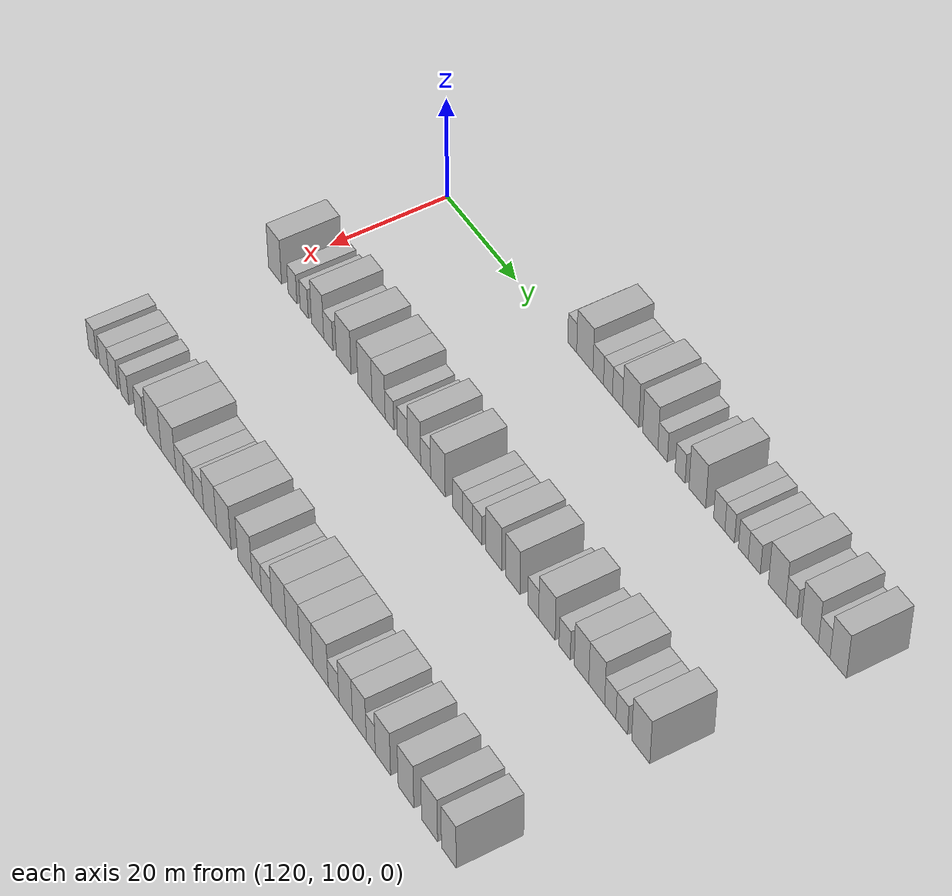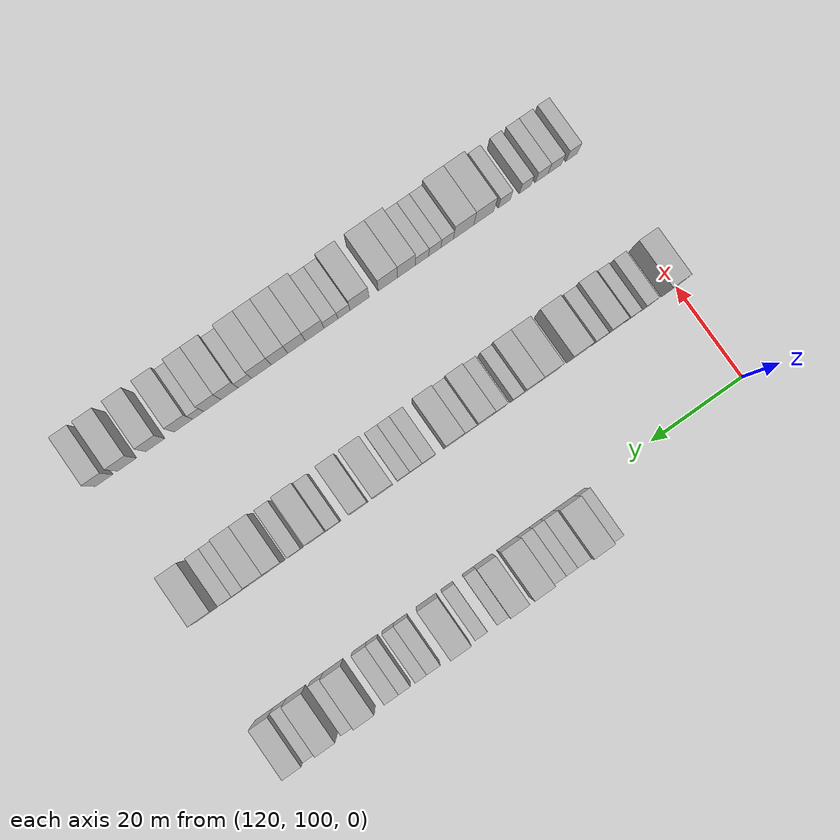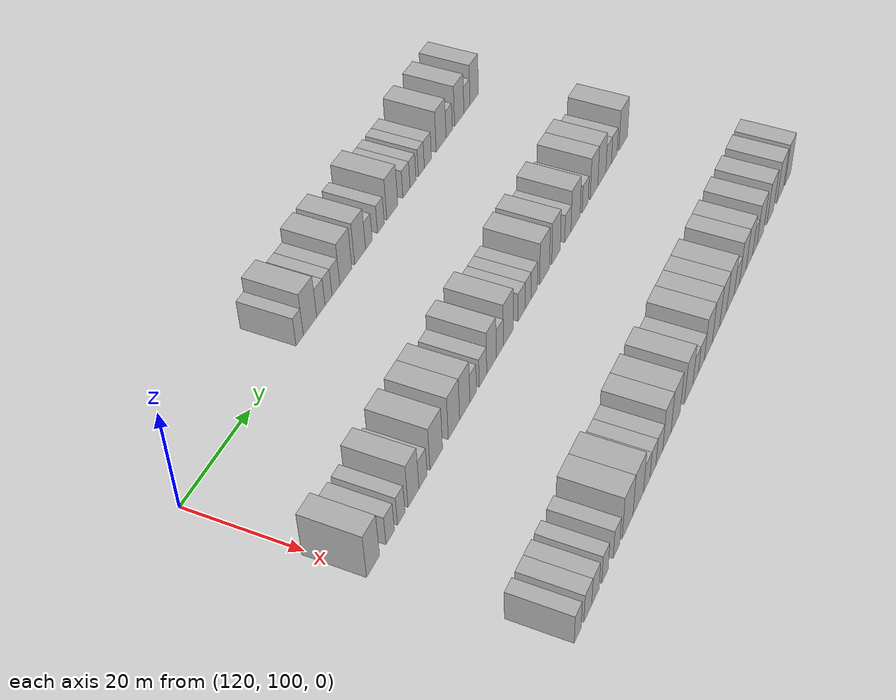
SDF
<sdf version="1.6">
 <world name="default">
  <model name="building_786">
   <static>1</static>
   <pose>115.0000 135.7359 0 0.000000 0.000000 0.000000</pose>
   <link name="link">
    <pose>0 0 3.00 0 0 0</pose>
    <collision name="collision"><geometry><box><size>10.0000 2.4359 6.0000</size></box></geometry></collision>
    <visual name="visual">
     <cast_shadows>0</cast_shadows>
     <geometry><box><size>10.0000 2.4359 6.0000</size></box></geometry>
     <material>
      <script>
       <uri>model://HANNAS_wall/materials/scripts</uri>
       <uri>model://HANNAS_wall/materials/textures</uri>
       <name>vrc/HANNAS_wall</name>
      </script>
     </material>
    </visual>
   </link>
  </model>
  <model name="building_787">
   <static>1</static>
   <pose>115.0000 139.1813 0 0.000000 0.000000 0.000000</pose>
   <link name="link">
    <pose>0 0 4.50 0 0 0</pose>
    <collision name="collision"><geometry><box><size>10.0000 4.4549 9.0000</size></box></geometry></collision>
    <visual name="visual">
     <cast_shadows>0</cast_shadows>
     <geometry><box><size>10.0000 4.4549 9.0000</size></box></geometry>
     <material>
      <script>
       <uri>model://HANNAS_wall/materials/scripts</uri>
       <uri>model://HANNAS_wall/materials/textures</uri>
       <name>vrc/HANNAS_wall</name>
      </script>
     </material>
    </visual>
   </link>
  </model>
  <model name="building_788">
   <static>1</static>
   <pose>115.0000 142.8373 0 0.000000 0.000000 0.000000</pose>
   <link name="link">
    <pose>0 0 3.00 0 0 0</pose>
    <collision name="collision"><geometry><box><size>10.0000 2.8572 6.0000</size></box></geometry></collision>
    <visual name="visual">
     <cast_shadows>0</cast_shadows>
     <geometry><box><size>10.0000 2.8572 6.0000</size></box></geometry>
     <material>
      <script>
       <uri>model://HANNAS_wall/materials/scripts</uri>
       <uri>model://HANNAS_wall/materials/textures</uri>
       <name>vrc/HANNAS_wall</name>
      </script>
     </material>
    </visual>
   </link>
  </model>
  <model name="building_789">
   <static>1</static>
   <pose>115.0000 145.4739 0 0.000000 0.000000 0.000000</pose>
   <link name="link">
    <pose>0 0 3.00 0 0 0</pose>
    <collision name="collision"><geometry><box><size>10.0000 2.4160 6.0000</size></box></geometry></collision>
    <visual name="visual">
     <cast_shadows>0</cast_shadows>
     <geometry><box><size>10.0000 2.4160 6.0000</size></box></geometry>
     <material>
      <script>
       <uri>model://HANNAS_wall/materials/scripts</uri>
       <uri>model://HANNAS_wall/materials/textures</uri>
       <name>vrc/HANNAS_wall</name>
      </script>
     </material>
    </visual>
   </link>
  </model>
  <model name="building_790">
   <static>1</static>
   <pose>115.0000 148.0427 0 0.000000 0.000000 0.000000</pose>
   <link name="link">
    <pose>0 0 3.00 0 0 0</pose>
    <collision name="collision"><geometry><box><size>10.0000 2.7216 6.0000</size></box></geometry></collision>
    <visual name="visual">
     <cast_shadows>0</cast_shadows>
     <geometry><box><size>10.0000 2.7216 6.0000</size></box></geometry>
     <material>
      <script>
       <uri>model://HANNAS_wall/materials/scripts</uri>
       <uri>model://HANNAS_wall/materials/textures</uri>
       <name>vrc/HANNAS_wall</name>
      </script>
     </material>
    </visual>
   </link>
  </model>
  <model name="building_791">
   <static>1</static>
   <pose>115.0000 151.5629 0 0.000000 0.000000 0.000000</pose>
   <link name="link">
    <pose>0 0 4.50 0 0 0</pose>
    <collision name="collision"><geometry><box><size>10.0000 4.3187 9.0000</size></box></geometry></collision>
    <visual name="visual">
     <cast_shadows>0</cast_shadows>
     <geometry><box><size>10.0000 4.3187 9.0000</size></box></geometry>
     <material>
      <script>
       <uri>model://HANNAS_wall/materials/scripts</uri>
       <uri>model://HANNAS_wall/materials/textures</uri>
       <name>vrc/HANNAS_wall</name>
      </script>
     </material>
    </visual>
   </link>
  </model>
  <model name="building_792">
   <static>1</static>
   <pose>115.0000 156.7295 0 0.000000 0.000000 0.000000</pose>
   <link name="link">
    <pose>0 0 4.50 0 0 0</pose>
    <collision name="collision"><geometry><box><size>10.0000 4.0146 9.0000</size></box></geometry></collision>
    <visual name="visual">
     <cast_shadows>0</cast_shadows>
     <geometry><box><size>10.0000 4.0146 9.0000</size></box></geometry>
     <material>
      <script>
       <uri>model://HANNAS_wall/materials/scripts</uri>
       <uri>model://HANNAS_wall/materials/textures</uri>
       <name>vrc/HANNAS_wall</name>
      </script>
     </material>
    </visual>
   </link>
  </model>
  <model name="building_793">
   <static>1</static>
   <pose>115.0000 159.9812 0 0.000000 0.000000 0.000000</pose>
   <link name="link">
    <pose>0 0 3.00 0 0 0</pose>
    <collision name="collision"><geometry><box><size>10.0000 2.4886 6.0000</size></box></geometry></collision>
    <visual name="visual">
     <cast_shadows>0</cast_shadows>
     <geometry><box><size>10.0000 2.4886 6.0000</size></box></geometry>
     <material>
      <script>
       <uri>model://HANNAS_wall/materials/scripts</uri>
       <uri>model://HANNAS_wall/materials/textures</uri>
       <name>vrc/HANNAS_wall</name>
      </script>
     </material>
    </visual>
   </link>
  </model>
  <model name="building_794">
   <static>1</static>
   <pose>115.0000 164.5142 0 0.000000 0.000000 0.000000</pose>
   <link name="link">
    <pose>0 0 3.00 0 0 0</pose>
    <collision name="collision"><geometry><box><size>10.0000 2.5775 6.0000</size></box></geometry></collision>
    <visual name="visual">
     <cast_shadows>0</cast_shadows>
     <geometry><box><size>10.0000 2.5775 6.0000</size></box></geometry>
     <material>
      <script>
       <uri>model://HANNAS_wall/materials/scripts</uri>
       <uri>model://HANNAS_wall/materials/textures</uri>
       <name>vrc/HANNAS_wall</name>
      </script>
     </material>
    </visual>
   </link>
  </model>
  <model name="building_795">
   <static>1</static>
   <pose>115.0000 168.9450 0 0.000000 0.000000 0.000000</pose>
   <link name="link">
    <pose>0 0 4.50 0 0 0</pose>
    <collision name="collision"><geometry><box><size>10.0000 4.2841 9.0000</size></box></geometry></collision>
    <visual name="visual">
     <cast_shadows>0</cast_shadows>
     <geometry><box><size>10.0000 4.2841 9.0000</size></box></geometry>
     <material>
      <script>
       <uri>model://HANNAS_wall/materials/scripts</uri>
       <uri>model://HANNAS_wall/materials/textures</uri>
       <name>vrc/HANNAS_wall</name>
      </script>
     </material>
    </visual>
   </link>
  </model>
  <model name="building_796">
   <static>1</static>
   <pose>115.0000 174.5108 0 0.000000 0.000000 0.000000</pose>
   <link name="link">
    <pose>0 0 3.00 0 0 0</pose>
    <collision name="collision"><geometry><box><size>10.0000 2.8474 6.0000</size></box></geometry></collision>
    <visual name="visual">
     <cast_shadows>0</cast_shadows>
     <geometry><box><size>10.0000 2.8474 6.0000</size></box></geometry>
     <material>
      <script>
       <uri>model://HANNAS_wall/materials/scripts</uri>
       <uri>model://HANNAS_wall/materials/textures</uri>
       <name>vrc/HANNAS_wall</name>
      </script>
     </material>
    </visual>
   </link>
  </model>
  <model name="building_797">
   <static>1</static>
   <pose>115.0000 177.1391 0 0.000000 0.000000 0.000000</pose>
   <link name="link">
    <pose>0 0 3.00 0 0 0</pose>
    <collision name="collision"><geometry><box><size>10.0000 2.4092 6.0000</size></box></geometry></collision>
    <visual name="visual">
     <cast_shadows>0</cast_shadows>
     <geometry><box><size>10.0000 2.4092 6.0000</size></box></geometry>
     <material>
      <script>
       <uri>model://HANNAS_wall/materials/scripts</uri>
       <uri>model://HANNAS_wall/materials/textures</uri>
       <name>vrc/HANNAS_wall</name>
      </script>
     </material>
    </visual>
   </link>
  </model>
  <model name="building_798">
   <static>1</static>
   <pose>115.0000 180.5668 0 0.000000 0.000000 0.000000</pose>
   <link name="link">
    <pose>0 0 3.00 0 0 0</pose>
    <collision name="collision"><geometry><box><size>10.0000 2.4461 6.0000</size></box></geometry></collision>
    <visual name="visual">
     <cast_shadows>0</cast_shadows>
     <geometry><box><size>10.0000 2.4461 6.0000</size></box></geometry>
     <material>
      <script>
       <uri>model://HANNAS_wall/materials/scripts</uri>
       <uri>model://HANNAS_wall/materials/textures</uri>
       <name>vrc/HANNAS_wall</name>
      </script>
     </material>
    </visual>
   </link>
  </model>
  <model name="building_799">
   <static>1</static>
   <pose>115.0000 183.2776 0 0.000000 0.000000 0.000000</pose>
   <link name="link">
    <pose>0 0 3.00 0 0 0</pose>
    <collision name="collision"><geometry><box><size>10.0000 2.9757 6.0000</size></box></geometry></collision>
    <visual name="visual">
     <cast_shadows>0</cast_shadows>
     <geometry><box><size>10.0000 2.9757 6.0000</size></box></geometry>
     <material>
      <script>
       <uri>model://HANNAS_wall/materials/scripts</uri>
       <uri>model://HANNAS_wall/materials/textures</uri>
       <name>vrc/HANNAS_wall</name>
      </script>
     </material>
    </visual>
   </link>
  </model>
  <model name="building_800">
   <static>1</static>
   <pose>115.0000 188.8872 0 0.000000 0.000000 0.000000</pose>
   <link name="link">
    <pose>0 0 4.50 0 0 0</pose>
    <collision name="collision"><geometry><box><size>10.0000 4.2435 9.0000</size></box></geometry></collision>
    <visual name="visual">
     <cast_shadows>0</cast_shadows>
     <geometry><box><size>10.0000 4.2435 9.0000</size></box></geometry>
     <material>
      <script>
       <uri>model://HANNAS_wall/materials/scripts</uri>
       <uri>model://HANNAS_wall/materials/textures</uri>
       <name>vrc/HANNAS_wall</name>
      </script>
     </material>
    </visual>
   </link>
  </model>
  <model name="building_801">
   <static>1</static>
   <pose>115.0000 192.3845 0 0.000000 0.000000 0.000000</pose>
   <link name="link">
    <pose>0 0 3.00 0 0 0</pose>
    <collision name="collision"><geometry><box><size>10.0000 2.7510 6.0000</size></box></geometry></collision>
    <visual name="visual">
     <cast_shadows>0</cast_shadows>
     <geometry><box><size>10.0000 2.7510 6.0000</size></box></geometry>
     <material>
      <script>
       <uri>model://HANNAS_wall/materials/scripts</uri>
       <uri>model://HANNAS_wall/materials/textures</uri>
       <name>vrc/HANNAS_wall</name>
      </script>
     </material>
    </visual>
   </link>
  </model>
  <model name="building_802">
   <static>1</static>
   <pose>115.0000 196.8190 0 0.000000 0.000000 0.000000</pose>
   <link name="link">
    <pose>0 0 4.50 0 0 0</pose>
    <collision name="collision"><geometry><box><size>10.0000 4.1181 9.0000</size></box></geometry></collision>
    <visual name="visual">
     <cast_shadows>0</cast_shadows>
     <geometry><box><size>10.0000 4.1181 9.0000</size></box></geometry>
     <material>
      <script>
       <uri>model://HANNAS_wall/materials/scripts</uri>
       <uri>model://HANNAS_wall/materials/textures</uri>
       <name>vrc/HANNAS_wall</name>
      </script>
     </material>
    </visual>
   </link>
  </model>
  <model name="building_803">
   <static>1</static>
   <pose>115.0000 200.2549 0 0.000000 0.000000 0.000000</pose>
   <link name="link">
    <pose>0 0 3.00 0 0 0</pose>
    <collision name="collision"><geometry><box><size>10.0000 2.7538 6.0000</size></box></geometry></collision>
    <visual name="visual">
     <cast_shadows>0</cast_shadows>
     <geometry><box><size>10.0000 2.7538 6.0000</size></box></geometry>
     <material>
      <script>
       <uri>model://HANNAS_wall/materials/scripts</uri>
       <uri>model://HANNAS_wall/materials/textures</uri>
       <name>vrc/HANNAS_wall</name>
      </script>
     </material>
    </visual>
   </link>
  </model>
  <model name="building_804">
   <static>1</static>
   <pose>115.0000 203.5782 0 0.000000 0.000000 0.000000</pose>
   <link name="link">
    <pose>0 0 4.50 0 0 0</pose>
    <collision name="collision"><geometry><box><size>10.0000 3.8928 9.0000</size></box></geometry></collision>
    <visual name="visual">
     <cast_shadows>0</cast_shadows>
     <geometry><box><size>10.0000 3.8928 9.0000</size></box></geometry>
     <material>
      <script>
       <uri>model://HANNAS_wall/materials/scripts</uri>
       <uri>model://HANNAS_wall/materials/textures</uri>
       <name>vrc/HANNAS_wall</name>
      </script>
     </material>
    </visual>
   </link>
  </model>
  <model name="building_993">
   <static>1</static>
   <pose>145.0000 101.3446 0 0.000000 0.000000 0.000000</pose>
   <link name="link">
    <pose>0 0 4.50 0 0 0</pose>
    <collision name="collision"><geometry><box><size>10.0000 4.0119 9.0000</size></box></geometry></collision>
    <visual name="visual">
     <cast_shadows>0</cast_shadows>
     <geometry><box><size>10.0000 4.0119 9.0000</size></box></geometry>
     <material>
      <script>
       <uri>model://HANNAS_wall/materials/scripts</uri>
       <uri>model://HANNAS_wall/materials/textures</uri>
       <name>vrc/HANNAS_wall</name>
      </script>
     </material>
    </visual>
   </link>
  </model>
  <model name="building_994">
   <static>1</static>
   <pose>145.0000 106.6947 0 0.000000 0.000000 0.000000</pose>
   <link name="link">
    <pose>0 0 3.00 0 0 0</pose>
    <collision name="collision"><geometry><box><size>10.0000 2.6883 6.0000</size></box></geometry></collision>
    <visual name="visual">
     <cast_shadows>0</cast_shadows>
     <geometry><box><size>10.0000 2.6883 6.0000</size></box></geometry>
     <material>
      <script>
       <uri>model://HANNAS_wall/materials/scripts</uri>
       <uri>model://HANNAS_wall/materials/textures</uri>
       <name>vrc/HANNAS_wall</name>
      </script>
     </material>
    </visual>
   </link>
  </model>
  <model name="building_995">
   <static>1</static>
   <pose>145.0000 110.2541 0 0.000000 0.000000 0.000000</pose>
   <link name="link">
    <pose>0 0 3.00 0 0 0</pose>
    <collision name="collision"><geometry><box><size>10.0000 2.4306 6.0000</size></box></geometry></collision>
    <visual name="visual">
     <cast_shadows>0</cast_shadows>
     <geometry><box><size>10.0000 2.4306 6.0000</size></box></geometry>
     <material>
      <script>
       <uri>model://HANNAS_wall/materials/scripts</uri>
       <uri>model://HANNAS_wall/materials/textures</uri>
       <name>vrc/HANNAS_wall</name>
      </script>
     </material>
    </visual>
   </link>
  </model>
  <model name="building_996">
   <static>1</static>
   <pose>145.0000 114.2871 0 0.000000 0.000000 0.000000</pose>
   <link name="link">
    <pose>0 0 4.50 0 0 0</pose>
    <collision name="collision"><geometry><box><size>10.0000 3.6354 9.0000</size></box></geometry></collision>
    <visual name="visual">
     <cast_shadows>0</cast_shadows>
     <geometry><box><size>10.0000 3.6354 9.0000</size></box></geometry>
     <material>
      <script>
       <uri>model://HANNAS_wall/materials/scripts</uri>
       <uri>model://HANNAS_wall/materials/textures</uri>
       <name>vrc/HANNAS_wall</name>
      </script>
     </material>
    </visual>
   </link>
  </model>
  <model name="building_997">
   <static>1</static>
   <pose>145.0000 117.4827 0 0.000000 0.000000 0.000000</pose>
   <link name="link">
    <pose>0 0 3.00 0 0 0</pose>
    <collision name="collision"><geometry><box><size>10.0000 2.7558 6.0000</size></box></geometry></collision>
    <visual name="visual">
     <cast_shadows>0</cast_shadows>
     <geometry><box><size>10.0000 2.7558 6.0000</size></box></geometry>
     <material>
      <script>
       <uri>model://HANNAS_wall/materials/scripts</uri>
       <uri>model://HANNAS_wall/materials/textures</uri>
       <name>vrc/HANNAS_wall</name>
      </script>
     </material>
    </visual>
   </link>
  </model>
  <model name="building_998">
   <static>1</static>
   <pose>145.0000 122.0464 0 0.000000 0.000000 0.000000</pose>
   <link name="link">
    <pose>0 0 4.50 0 0 0</pose>
    <collision name="collision"><geometry><box><size>10.0000 4.3716 9.0000</size></box></geometry></collision>
    <visual name="visual">
     <cast_shadows>0</cast_shadows>
     <geometry><box><size>10.0000 4.3716 9.0000</size></box></geometry>
     <material>
      <script>
       <uri>model://HANNAS_wall/materials/scripts</uri>
       <uri>model://HANNAS_wall/materials/textures</uri>
       <name>vrc/HANNAS_wall</name>
      </script>
     </material>
    </visual>
   </link>
  </model>
  <model name="building_999">
   <static>1</static>
   <pose>145.0000 128.2923 0 0.000000 0.000000 0.000000</pose>
   <link name="link">
    <pose>0 0 4.50 0 0 0</pose>
    <collision name="collision"><geometry><box><size>10.0000 4.1203 9.0000</size></box></geometry></collision>
    <visual name="visual">
     <cast_shadows>0</cast_shadows>
     <geometry><box><size>10.0000 4.1203 9.0000</size></box></geometry>
     <material>
      <script>
       <uri>model://HANNAS_wall/materials/scripts</uri>
       <uri>model://HANNAS_wall/materials/textures</uri>
       <name>vrc/HANNAS_wall</name>
      </script>
     </material>
    </visual>
   </link>
  </model>
  <model name="building_1000">
   <static>1</static>
   <pose>145.0000 132.2421 0 0.000000 0.000000 0.000000</pose>
   <link name="link">
    <pose>0 0 4.50 0 0 0</pose>
    <collision name="collision"><geometry><box><size>10.0000 3.7793 9.0000</size></box></geometry></collision>
    <visual name="visual">
     <cast_shadows>0</cast_shadows>
     <geometry><box><size>10.0000 3.7793 9.0000</size></box></geometry>
     <material>
      <script>
       <uri>model://HANNAS_wall/materials/scripts</uri>
       <uri>model://HANNAS_wall/materials/textures</uri>
       <name>vrc/HANNAS_wall</name>
      </script>
     </material>
    </visual>
   </link>
  </model>
  <model name="building_1001">
   <static>1</static>
   <pose>145.0000 135.3693 0 0.000000 0.000000 0.000000</pose>
   <link name="link">
    <pose>0 0 3.00 0 0 0</pose>
    <collision name="collision"><geometry><box><size>10.0000 2.4751 6.0000</size></box></geometry></collision>
    <visual name="visual">
     <cast_shadows>0</cast_shadows>
     <geometry><box><size>10.0000 2.4751 6.0000</size></box></geometry>
     <material>
      <script>
       <uri>model://HANNAS_wall/materials/scripts</uri>
       <uri>model://HANNAS_wall/materials/textures</uri>
       <name>vrc/HANNAS_wall</name>
      </script>
     </material>
    </visual>
   </link>
  </model>
  <model name="building_1002">
   <static>1</static>
   <pose>145.0000 139.0709 0 0.000000 0.000000 0.000000</pose>
   <link name="link">
    <pose>0 0 3.00 0 0 0</pose>
    <collision name="collision"><geometry><box><size>10.0000 2.9282 6.0000</size></box></geometry></collision>
    <visual name="visual">
     <cast_shadows>0</cast_shadows>
     <geometry><box><size>10.0000 2.9282 6.0000</size></box></geometry>
     <material>
      <script>
       <uri>model://HANNAS_wall/materials/scripts</uri>
       <uri>model://HANNAS_wall/materials/textures</uri>
       <name>vrc/HANNAS_wall</name>
      </script>
     </material>
    </visual>
   </link>
  </model>
  <model name="building_1003">
   <static>1</static>
   <pose>145.0000 142.3724 0 0.000000 0.000000 0.000000</pose>
   <link name="link">
    <pose>0 0 4.50 0 0 0</pose>
    <collision name="collision"><geometry><box><size>10.0000 3.6749 9.0000</size></box></geometry></collision>
    <visual name="visual">
     <cast_shadows>0</cast_shadows>
     <geometry><box><size>10.0000 3.6749 9.0000</size></box></geometry>
     <material>
      <script>
       <uri>model://HANNAS_wall/materials/scripts</uri>
       <uri>model://HANNAS_wall/materials/textures</uri>
       <name>vrc/HANNAS_wall</name>
      </script>
     </material>
    </visual>
   </link>
  </model>
  <model name="building_1004">
   <static>1</static>
   <pose>145.0000 145.6116 0 0.000000 0.000000 0.000000</pose>
   <link name="link">
    <pose>0 0 3.00 0 0 0</pose>
    <collision name="collision"><geometry><box><size>10.0000 2.8035 6.0000</size></box></geometry></collision>
    <visual name="visual">
     <cast_shadows>0</cast_shadows>
     <geometry><box><size>10.0000 2.8035 6.0000</size></box></geometry>
     <material>
      <script>
       <uri>model://HANNAS_wall/materials/scripts</uri>
       <uri>model://HANNAS_wall/materials/textures</uri>
       <name>vrc/HANNAS_wall</name>
      </script>
     </material>
    </visual>
   </link>
  </model>
  <model name="building_1005">
   <static>1</static>
   <pose>145.0000 149.0257 0 0.000000 0.000000 0.000000</pose>
   <link name="link">
    <pose>0 0 4.50 0 0 0</pose>
    <collision name="collision"><geometry><box><size>10.0000 4.0246 9.0000</size></box></geometry></collision>
    <visual name="visual">
     <cast_shadows>0</cast_shadows>
     <geometry><box><size>10.0000 4.0246 9.0000</size></box></geometry>
     <material>
      <script>
       <uri>model://HANNAS_wall/materials/scripts</uri>
       <uri>model://HANNAS_wall/materials/textures</uri>
       <name>vrc/HANNAS_wall</name>
      </script>
     </material>
    </visual>
   </link>
  </model>
  <model name="building_1006">
   <static>1</static>
   <pose>145.0000 154.4596 0 0.000000 0.000000 0.000000</pose>
   <link name="link">
    <pose>0 0 3.00 0 0 0</pose>
    <collision name="collision"><geometry><box><size>10.0000 2.8433 6.0000</size></box></geometry></collision>
    <visual name="visual">
     <cast_shadows>0</cast_shadows>
     <geometry><box><size>10.0000 2.8433 6.0000</size></box></geometry>
     <material>
      <script>
       <uri>model://HANNAS_wall/materials/scripts</uri>
       <uri>model://HANNAS_wall/materials/textures</uri>
       <name>vrc/HANNAS_wall</name>
      </script>
     </material>
    </visual>
   </link>
  </model>
  <model name="building_1007">
   <static>1</static>
   <pose>145.0000 157.1742 0 0.000000 0.000000 0.000000</pose>
   <link name="link">
    <pose>0 0 3.00 0 0 0</pose>
    <collision name="collision"><geometry><box><size>10.0000 2.5857 6.0000</size></box></geometry></collision>
    <visual name="visual">
     <cast_shadows>0</cast_shadows>
     <geometry><box><size>10.0000 2.5857 6.0000</size></box></geometry>
     <material>
      <script>
       <uri>model://HANNAS_wall/materials/scripts</uri>
       <uri>model://HANNAS_wall/materials/textures</uri>
       <name>vrc/HANNAS_wall</name>
      </script>
     </material>
    </visual>
   </link>
  </model>
  <model name="building_1008">
   <static>1</static>
   <pose>145.0000 159.7917 0 0.000000 0.000000 0.000000</pose>
   <link name="link">
    <pose>0 0 3.00 0 0 0</pose>
    <collision name="collision"><geometry><box><size>10.0000 2.6494 6.0000</size></box></geometry></collision>
    <visual name="visual">
     <cast_shadows>0</cast_shadows>
     <geometry><box><size>10.0000 2.6494 6.0000</size></box></geometry>
     <material>
      <script>
       <uri>model://HANNAS_wall/materials/scripts</uri>
       <uri>model://HANNAS_wall/materials/textures</uri>
       <name>vrc/HANNAS_wall</name>
      </script>
     </material>
    </visual>
   </link>
  </model>
  <model name="building_1009">
   <static>1</static>
   <pose>145.0000 164.2636 0 0.000000 0.000000 0.000000</pose>
   <link name="link">
    <pose>0 0 4.50 0 0 0</pose>
    <collision name="collision"><geometry><box><size>10.0000 4.2942 9.0000</size></box></geometry></collision>
    <visual name="visual">
     <cast_shadows>0</cast_shadows>
     <geometry><box><size>10.0000 4.2942 9.0000</size></box></geometry>
     <material>
      <script>
       <uri>model://HANNAS_wall/materials/scripts</uri>
       <uri>model://HANNAS_wall/materials/textures</uri>
       <name>vrc/HANNAS_wall</name>
      </script>
     </material>
    </visual>
   </link>
  </model>
  <model name="building_1010">
   <static>1</static>
   <pose>145.0000 169.3309 0 0.000000 0.000000 0.000000</pose>
   <link name="link">
    <pose>0 0 4.50 0 0 0</pose>
    <collision name="collision"><geometry><box><size>10.0000 3.8404 9.0000</size></box></geometry></collision>
    <visual name="visual">
     <cast_shadows>0</cast_shadows>
     <geometry><box><size>10.0000 3.8404 9.0000</size></box></geometry>
     <material>
      <script>
       <uri>model://HANNAS_wall/materials/scripts</uri>
       <uri>model://HANNAS_wall/materials/textures</uri>
       <name>vrc/HANNAS_wall</name>
      </script>
     </material>
    </visual>
   </link>
  </model>
  <model name="building_1011">
   <static>1</static>
   <pose>145.0000 174.6874 0 0.000000 0.000000 0.000000</pose>
   <link name="link">
    <pose>0 0 3.00 0 0 0</pose>
    <collision name="collision"><geometry><box><size>10.0000 2.8726 6.0000</size></box></geometry></collision>
    <visual name="visual">
     <cast_shadows>0</cast_shadows>
     <geometry><box><size>10.0000 2.8726 6.0000</size></box></geometry>
     <material>
      <script>
       <uri>model://HANNAS_wall/materials/scripts</uri>
       <uri>model://HANNAS_wall/materials/textures</uri>
       <name>vrc/HANNAS_wall</name>
      </script>
     </material>
    </visual>
   </link>
  </model>
  <model name="building_1012">
   <static>1</static>
   <pose>145.0000 178.2539 0 0.000000 0.000000 0.000000</pose>
   <link name="link">
    <pose>0 0 4.50 0 0 0</pose>
    <collision name="collision"><geometry><box><size>10.0000 4.2606 9.0000</size></box></geometry></collision>
    <visual name="visual">
     <cast_shadows>0</cast_shadows>
     <geometry><box><size>10.0000 4.2606 9.0000</size></box></geometry>
     <material>
      <script>
       <uri>model://HANNAS_wall/materials/scripts</uri>
       <uri>model://HANNAS_wall/materials/textures</uri>
       <name>vrc/HANNAS_wall</name>
      </script>
     </material>
    </visual>
   </link>
  </model>
  <model name="building_1013">
   <static>1</static>
   <pose>145.0000 182.8282 0 0.000000 0.000000 0.000000</pose>
   <link name="link">
    <pose>0 0 3.00 0 0 0</pose>
    <collision name="collision"><geometry><box><size>10.0000 2.8880 6.0000</size></box></geometry></collision>
    <visual name="visual">
     <cast_shadows>0</cast_shadows>
     <geometry><box><size>10.0000 2.8880 6.0000</size></box></geometry>
     <material>
      <script>
       <uri>model://HANNAS_wall/materials/scripts</uri>
       <uri>model://HANNAS_wall/materials/textures</uri>
       <name>vrc/HANNAS_wall</name>
      </script>
     </material>
    </visual>
   </link>
  </model>
  <model name="building_1014">
   <static>1</static>
   <pose>145.0000 187.1250 0 0.000000 0.000000 0.000000</pose>
   <link name="link">
    <pose>0 0 4.50 0 0 0</pose>
    <collision name="collision"><geometry><box><size>10.0000 3.7057 9.0000</size></box></geometry></collision>
    <visual name="visual">
     <cast_shadows>0</cast_shadows>
     <geometry><box><size>10.0000 3.7057 9.0000</size></box></geometry>
     <material>
      <script>
       <uri>model://HANNAS_wall/materials/scripts</uri>
       <uri>model://HANNAS_wall/materials/textures</uri>
       <name>vrc/HANNAS_wall</name>
      </script>
     </material>
    </visual>
   </link>
  </model>
  <model name="building_1015">
   <static>1</static>
   <pose>145.0000 190.9746 0 0.000000 0.000000 0.000000</pose>
   <link name="link">
    <pose>0 0 4.50 0 0 0</pose>
    <collision name="collision"><geometry><box><size>10.0000 3.9934 9.0000</size></box></geometry></collision>
    <visual name="visual">
     <cast_shadows>0</cast_shadows>
     <geometry><box><size>10.0000 3.9934 9.0000</size></box></geometry>
     <material>
      <script>
       <uri>model://HANNAS_wall/materials/scripts</uri>
       <uri>model://HANNAS_wall/materials/textures</uri>
       <name>vrc/HANNAS_wall</name>
      </script>
     </material>
    </visual>
   </link>
  </model>
  <model name="building_1016">
   <static>1</static>
   <pose>145.0000 194.3828 0 0.000000 0.000000 0.000000</pose>
   <link name="link">
    <pose>0 0 3.00 0 0 0</pose>
    <collision name="collision"><geometry><box><size>10.0000 2.8231 6.0000</size></box></geometry></collision>
    <visual name="visual">
     <cast_shadows>0</cast_shadows>
     <geometry><box><size>10.0000 2.8231 6.0000</size></box></geometry>
     <material>
      <script>
       <uri>model://HANNAS_wall/materials/scripts</uri>
       <uri>model://HANNAS_wall/materials/textures</uri>
       <name>vrc/HANNAS_wall</name>
      </script>
     </material>
    </visual>
   </link>
  </model>
  <model name="building_1017">
   <static>1</static>
   <pose>145.0000 197.2358 0 0.000000 0.000000 0.000000</pose>
   <link name="link">
    <pose>0 0 3.00 0 0 0</pose>
    <collision name="collision"><geometry><box><size>10.0000 2.8828 6.0000</size></box></geometry></collision>
    <visual name="visual">
     <cast_shadows>0</cast_shadows>
     <geometry><box><size>10.0000 2.8828 6.0000</size></box></geometry>
     <material>
      <script>
       <uri>model://HANNAS_wall/materials/scripts</uri>
       <uri>model://HANNAS_wall/materials/textures</uri>
       <name>vrc/HANNAS_wall</name>
      </script>
     </material>
    </visual>
   </link>
  </model>
  <model name="building_1018">
   <static>1</static>
   <pose>145.0000 201.9114 0 0.000000 0.000000 0.000000</pose>
   <link name="link">
    <pose>0 0 4.50 0 0 0</pose>
    <collision name="collision"><geometry><box><size>10.0000 4.4685 9.0000</size></box></geometry></collision>
    <visual name="visual">
     <cast_shadows>0</cast_shadows>
     <geometry><box><size>10.0000 4.4685 9.0000</size></box></geometry>
     <material>
      <script>
       <uri>model://HANNAS_wall/materials/scripts</uri>
       <uri>model://HANNAS_wall/materials/textures</uri>
       <name>vrc/HANNAS_wall</name>
      </script>
     </material>
    </visual>
   </link>
  </model>
  <model name="building_1218">
   <static>1</static>
   <pose>175.0000 101.7971 0 0.000000 0.000000 0.000000</pose>
   <link name="link">
    <pose>0 0 3.00 0 0 0</pose>
    <collision name="collision"><geometry><box><size>10.0000 2.5549 6.0000</size></box></geometry></collision>
    <visual name="visual">
     <cast_shadows>0</cast_shadows>
     <geometry><box><size>10.0000 2.5549 6.0000</size></box></geometry>
     <material>
      <script>
       <uri>model://HANNAS_wall/materials/scripts</uri>
       <uri>model://HANNAS_wall/materials/textures</uri>
       <name>vrc/HANNAS_wall</name>
      </script>
     </material>
    </visual>
   </link>
  </model>
  <model name="building_1219">
   <static>1</static>
   <pose>175.0000 105.5597 0 0.000000 0.000000 0.000000</pose>
   <link name="link">
    <pose>0 0 3.00 0 0 0</pose>
    <collision name="collision"><geometry><box><size>10.0000 2.9703 6.0000</size></box></geometry></collision>
    <visual name="visual">
     <cast_shadows>0</cast_shadows>
     <geometry><box><size>10.0000 2.9703 6.0000</size></box></geometry>
     <material>
      <script>
       <uri>model://HANNAS_wall/materials/scripts</uri>
       <uri>model://HANNAS_wall/materials/textures</uri>
       <name>vrc/HANNAS_wall</name>
      </script>
     </material>
    </visual>
   </link>
  </model>
  <model name="building_1220">
   <static>1</static>
   <pose>175.0000 108.4552 0 0.000000 0.000000 0.000000</pose>
   <link name="link">
    <pose>0 0 3.00 0 0 0</pose>
    <collision name="collision"><geometry><box><size>10.0000 2.8209 6.0000</size></box></geometry></collision>
    <visual name="visual">
     <cast_shadows>0</cast_shadows>
     <geometry><box><size>10.0000 2.8209 6.0000</size></box></geometry>
     <material>
      <script>
       <uri>model://HANNAS_wall/materials/scripts</uri>
       <uri>model://HANNAS_wall/materials/textures</uri>
       <name>vrc/HANNAS_wall</name>
      </script>
     </material>
    </visual>
   </link>
  </model>
  <model name="building_1221">
   <static>1</static>
   <pose>175.0000 112.1241 0 0.000000 0.000000 0.000000</pose>
   <link name="link">
    <pose>0 0 3.00 0 0 0</pose>
    <collision name="collision"><geometry><box><size>10.0000 2.5169 6.0000</size></box></geometry></collision>
    <visual name="visual">
     <cast_shadows>0</cast_shadows>
     <geometry><box><size>10.0000 2.5169 6.0000</size></box></geometry>
     <material>
      <script>
       <uri>model://HANNAS_wall/materials/scripts</uri>
       <uri>model://HANNAS_wall/materials/textures</uri>
       <name>vrc/HANNAS_wall</name>
      </script>
     </material>
    </visual>
   </link>
  </model>
  <model name="building_1222">
   <static>1</static>
   <pose>175.0000 116.6926 0 0.000000 0.000000 0.000000</pose>
   <link name="link">
    <pose>0 0 3.00 0 0 0</pose>
    <collision name="collision"><geometry><box><size>10.0000 2.6200 6.0000</size></box></geometry></collision>
    <visual name="visual">
     <cast_shadows>0</cast_shadows>
     <geometry><box><size>10.0000 2.6200 6.0000</size></box></geometry>
     <material>
      <script>
       <uri>model://HANNAS_wall/materials/scripts</uri>
       <uri>model://HANNAS_wall/materials/textures</uri>
       <name>vrc/HANNAS_wall</name>
      </script>
     </material>
    </visual>
   </link>
  </model>
  <model name="building_1223">
   <static>1</static>
   <pose>175.0000 121.2175 0 0.000000 0.000000 0.000000</pose>
   <link name="link">
    <pose>0 0 4.50 0 0 0</pose>
    <collision name="collision"><geometry><box><size>10.0000 4.4298 9.0000</size></box></geometry></collision>
    <visual name="visual">
     <cast_shadows>0</cast_shadows>
     <geometry><box><size>10.0000 4.4298 9.0000</size></box></geometry>
     <material>
      <script>
       <uri>model://HANNAS_wall/materials/scripts</uri>
       <uri>model://HANNAS_wall/materials/textures</uri>
       <name>vrc/HANNAS_wall</name>
      </script>
     </material>
    </visual>
   </link>
  </model>
  <model name="building_1224">
   <static>1</static>
   <pose>175.0000 125.6699 0 0.000000 0.000000 0.000000</pose>
   <link name="link">
    <pose>0 0 4.50 0 0 0</pose>
    <collision name="collision"><geometry><box><size>10.0000 4.4750 9.0000</size></box></geometry></collision>
    <visual name="visual">
     <cast_shadows>0</cast_shadows>
     <geometry><box><size>10.0000 4.4750 9.0000</size></box></geometry>
     <material>
      <script>
       <uri>model://HANNAS_wall/materials/scripts</uri>
       <uri>model://HANNAS_wall/materials/textures</uri>
       <name>vrc/HANNAS_wall</name>
      </script>
     </material>
    </visual>
   </link>
  </model>
  <model name="building_1225">
   <static>1</static>
   <pose>175.0000 129.2754 0 0.000000 0.000000 0.000000</pose>
   <link name="link">
    <pose>0 0 3.00 0 0 0</pose>
    <collision name="collision"><geometry><box><size>10.0000 2.7360 6.0000</size></box></geometry></collision>
    <visual name="visual">
     <cast_shadows>0</cast_shadows>
     <geometry><box><size>10.0000 2.7360 6.0000</size></box></geometry>
     <material>
      <script>
       <uri>model://HANNAS_wall/materials/scripts</uri>
       <uri>model://HANNAS_wall/materials/textures</uri>
       <name>vrc/HANNAS_wall</name>
      </script>
     </material>
    </visual>
   </link>
  </model>
  <model name="building_1226">
   <static>1</static>
   <pose>175.0000 131.9871 0 0.000000 0.000000 0.000000</pose>
   <link name="link">
    <pose>0 0 3.00 0 0 0</pose>
    <collision name="collision"><geometry><box><size>10.0000 2.6875 6.0000</size></box></geometry></collision>
    <visual name="visual">
     <cast_shadows>0</cast_shadows>
     <geometry><box><size>10.0000 2.6875 6.0000</size></box></geometry>
     <material>
      <script>
       <uri>model://HANNAS_wall/materials/scripts</uri>
       <uri>model://HANNAS_wall/materials/textures</uri>
       <name>vrc/HANNAS_wall</name>
      </script>
     </material>
    </visual>
   </link>
  </model>
  <model name="building_1227">
   <static>1</static>
   <pose>175.0000 134.8231 0 0.000000 0.000000 0.000000</pose>
   <link name="link">
    <pose>0 0 3.00 0 0 0</pose>
    <collision name="collision"><geometry><box><size>10.0000 2.9845 6.0000</size></box></geometry></collision>
    <visual name="visual">
     <cast_shadows>0</cast_shadows>
     <geometry><box><size>10.0000 2.9845 6.0000</size></box></geometry>
     <material>
      <script>
       <uri>model://HANNAS_wall/materials/scripts</uri>
       <uri>model://HANNAS_wall/materials/textures</uri>
       <name>vrc/HANNAS_wall</name>
      </script>
     </material>
    </visual>
   </link>
  </model>
  <model name="building_1228">
   <static>1</static>
   <pose>175.0000 138.2332 0 0.000000 0.000000 0.000000</pose>
   <link name="link">
    <pose>0 0 4.50 0 0 0</pose>
    <collision name="collision"><geometry><box><size>10.0000 3.8358 9.0000</size></box></geometry></collision>
    <visual name="visual">
     <cast_shadows>0</cast_shadows>
     <geometry><box><size>10.0000 3.8358 9.0000</size></box></geometry>
     <material>
      <script>
       <uri>model://HANNAS_wall/materials/scripts</uri>
       <uri>model://HANNAS_wall/materials/textures</uri>
       <name>vrc/HANNAS_wall</name>
      </script>
     </material>
    </visual>
   </link>
  </model>
  <model name="building_1229">
   <static>1</static>
   <pose>175.0000 142.2654 0 0.000000 0.000000 0.000000</pose>
   <link name="link">
    <pose>0 0 4.50 0 0 0</pose>
    <collision name="collision"><geometry><box><size>10.0000 4.2286 9.0000</size></box></geometry></collision>
    <visual name="visual">
     <cast_shadows>0</cast_shadows>
     <geometry><box><size>10.0000 4.2286 9.0000</size></box></geometry>
     <material>
      <script>
       <uri>model://HANNAS_wall/materials/scripts</uri>
       <uri>model://HANNAS_wall/materials/textures</uri>
       <name>vrc/HANNAS_wall</name>
      </script>
     </material>
    </visual>
   </link>
  </model>
  <model name="building_1230">
   <static>1</static>
   <pose>175.0000 148.4470 0 0.000000 0.000000 0.000000</pose>
   <link name="link">
    <pose>0 0 4.50 0 0 0</pose>
    <collision name="collision"><geometry><box><size>10.0000 4.1346 9.0000</size></box></geometry></collision>
    <visual name="visual">
     <cast_shadows>0</cast_shadows>
     <geometry><box><size>10.0000 4.1346 9.0000</size></box></geometry>
     <material>
      <script>
       <uri>model://HANNAS_wall/materials/scripts</uri>
       <uri>model://HANNAS_wall/materials/textures</uri>
       <name>vrc/HANNAS_wall</name>
      </script>
     </material>
    </visual>
   </link>
  </model>
  <model name="building_1231">
   <static>1</static>
   <pose>175.0000 151.8406 0 0.000000 0.000000 0.000000</pose>
   <link name="link">
    <pose>0 0 3.00 0 0 0</pose>
    <collision name="collision"><geometry><box><size>10.0000 2.6527 6.0000</size></box></geometry></collision>
    <visual name="visual">
     <cast_shadows>0</cast_shadows>
     <geometry><box><size>10.0000 2.6527 6.0000</size></box></geometry>
     <material>
      <script>
       <uri>model://HANNAS_wall/materials/scripts</uri>
       <uri>model://HANNAS_wall/materials/textures</uri>
       <name>vrc/HANNAS_wall</name>
      </script>
     </material>
    </visual>
   </link>
  </model>
  <model name="building_1232">
   <static>1</static>
   <pose>175.0000 154.6662 0 0.000000 0.000000 0.000000</pose>
   <link name="link">
    <pose>0 0 3.00 0 0 0</pose>
    <collision name="collision"><geometry><box><size>10.0000 2.9985 6.0000</size></box></geometry></collision>
    <visual name="visual">
     <cast_shadows>0</cast_shadows>
     <geometry><box><size>10.0000 2.9985 6.0000</size></box></geometry>
     <material>
      <script>
       <uri>model://HANNAS_wall/materials/scripts</uri>
       <uri>model://HANNAS_wall/materials/textures</uri>
       <name>vrc/HANNAS_wall</name>
      </script>
     </material>
    </visual>
   </link>
  </model>
  <model name="building_1233">
   <static>1</static>
   <pose>175.0000 158.1891 0 0.000000 0.000000 0.000000</pose>
   <link name="link">
    <pose>0 0 4.50 0 0 0</pose>
    <collision name="collision"><geometry><box><size>10.0000 4.0473 9.0000</size></box></geometry></collision>
    <visual name="visual">
     <cast_shadows>0</cast_shadows>
     <geometry><box><size>10.0000 4.0473 9.0000</size></box></geometry>
     <material>
      <script>
       <uri>model://HANNAS_wall/materials/scripts</uri>
       <uri>model://HANNAS_wall/materials/textures</uri>
       <name>vrc/HANNAS_wall</name>
      </script>
     </material>
    </visual>
   </link>
  </model>
  <model name="building_1234">
   <static>1</static>
   <pose>175.0000 162.1293 0 0.000000 0.000000 0.000000</pose>
   <link name="link">
    <pose>0 0 4.50 0 0 0</pose>
    <collision name="collision"><geometry><box><size>10.0000 3.8330 9.0000</size></box></geometry></collision>
    <visual name="visual">
     <cast_shadows>0</cast_shadows>
     <geometry><box><size>10.0000 3.8330 9.0000</size></box></geometry>
     <material>
      <script>
       <uri>model://HANNAS_wall/materials/scripts</uri>
       <uri>model://HANNAS_wall/materials/textures</uri>
       <name>vrc/HANNAS_wall</name>
      </script>
     </material>
    </visual>
   </link>
  </model>
  <model name="building_1235">
   <static>1</static>
   <pose>175.0000 165.8576 0 0.000000 0.000000 0.000000</pose>
   <link name="link">
    <pose>0 0 4.50 0 0 0</pose>
    <collision name="collision"><geometry><box><size>10.0000 3.6235 9.0000</size></box></geometry></collision>
    <visual name="visual">
     <cast_shadows>0</cast_shadows>
     <geometry><box><size>10.0000 3.6235 9.0000</size></box></geometry>
     <material>
      <script>
       <uri>model://HANNAS_wall/materials/scripts</uri>
       <uri>model://HANNAS_wall/materials/textures</uri>
       <name>vrc/HANNAS_wall</name>
      </script>
     </material>
    </visual>
   </link>
  </model>
  <model name="building_1236">
   <static>1</static>
   <pose>175.0000 169.7777 0 0.000000 0.000000 0.000000</pose>
   <link name="link">
    <pose>0 0 4.50 0 0 0</pose>
    <collision name="collision"><geometry><box><size>10.0000 4.2168 9.0000</size></box></geometry></collision>
    <visual name="visual">
     <cast_shadows>0</cast_shadows>
     <geometry><box><size>10.0000 4.2168 9.0000</size></box></geometry>
     <material>
      <script>
       <uri>model://HANNAS_wall/materials/scripts</uri>
       <uri>model://HANNAS_wall/materials/textures</uri>
       <name>vrc/HANNAS_wall</name>
      </script>
     </material>
    </visual>
   </link>
  </model>
  <model name="building_1237">
   <static>1</static>
   <pose>175.0000 173.3598 0 0.000000 0.000000 0.000000</pose>
   <link name="link">
    <pose>0 0 3.00 0 0 0</pose>
    <collision name="collision"><geometry><box><size>10.0000 2.9473 6.0000</size></box></geometry></collision>
    <visual name="visual">
     <cast_shadows>0</cast_shadows>
     <geometry><box><size>10.0000 2.9473 6.0000</size></box></geometry>
     <material>
      <script>
       <uri>model://HANNAS_wall/materials/scripts</uri>
       <uri>model://HANNAS_wall/materials/textures</uri>
       <name>vrc/HANNAS_wall</name>
      </script>
     </material>
    </visual>
   </link>
  </model>
  <model name="building_1238">
   <static>1</static>
   <pose>175.0000 176.6772 0 0.000000 0.000000 0.000000</pose>
   <link name="link">
    <pose>0 0 4.50 0 0 0</pose>
    <collision name="collision"><geometry><box><size>10.0000 3.6876 9.0000</size></box></geometry></collision>
    <visual name="visual">
     <cast_shadows>0</cast_shadows>
     <geometry><box><size>10.0000 3.6876 9.0000</size></box></geometry>
     <material>
      <script>
       <uri>model://HANNAS_wall/materials/scripts</uri>
       <uri>model://HANNAS_wall/materials/textures</uri>
       <name>vrc/HANNAS_wall</name>
      </script>
     </material>
    </visual>
   </link>
  </model>
  <model name="building_1239">
   <static>1</static>
   <pose>175.0000 180.3618 0 0.000000 0.000000 0.000000</pose>
   <link name="link">
    <pose>0 0 4.50 0 0 0</pose>
    <collision name="collision"><geometry><box><size>10.0000 3.6816 9.0000</size></box></geometry></collision>
    <visual name="visual">
     <cast_shadows>0</cast_shadows>
     <geometry><box><size>10.0000 3.6816 9.0000</size></box></geometry>
     <material>
      <script>
       <uri>model://HANNAS_wall/materials/scripts</uri>
       <uri>model://HANNAS_wall/materials/textures</uri>
       <name>vrc/HANNAS_wall</name>
      </script>
     </material>
    </visual>
   </link>
  </model>
  <model name="building_1240">
   <static>1</static>
   <pose>175.0000 183.4135 0 0.000000 0.000000 0.000000</pose>
   <link name="link">
    <pose>0 0 3.00 0 0 0</pose>
    <collision name="collision"><geometry><box><size>10.0000 2.4219 6.0000</size></box></geometry></collision>
    <visual name="visual">
     <cast_shadows>0</cast_shadows>
     <geometry><box><size>10.0000 2.4219 6.0000</size></box></geometry>
     <material>
      <script>
       <uri>model://HANNAS_wall/materials/scripts</uri>
       <uri>model://HANNAS_wall/materials/textures</uri>
       <name>vrc/HANNAS_wall</name>
      </script>
     </material>
    </visual>
   </link>
  </model>
  <model name="building_1241">
   <static>1</static>
   <pose>175.0000 186.6352 0 0.000000 0.000000 0.000000</pose>
   <link name="link">
    <pose>0 0 4.50 0 0 0</pose>
    <collision name="collision"><geometry><box><size>10.0000 4.0214 9.0000</size></box></geometry></collision>
    <visual name="visual">
     <cast_shadows>0</cast_shadows>
     <geometry><box><size>10.0000 4.0214 9.0000</size></box></geometry>
     <material>
      <script>
       <uri>model://HANNAS_wall/materials/scripts</uri>
       <uri>model://HANNAS_wall/materials/textures</uri>
       <name>vrc/HANNAS_wall</name>
      </script>
     </material>
    </visual>
   </link>
  </model>
  <model name="building_1242">
   <static>1</static>
   <pose>175.0000 192.6838 0 0.000000 0.000000 0.000000</pose>
   <link name="link">
    <pose>0 0 4.50 0 0 0</pose>
    <collision name="collision"><geometry><box><size>10.0000 4.0759 9.0000</size></box></geometry></collision>
    <visual name="visual">
     <cast_shadows>0</cast_shadows>
     <geometry><box><size>10.0000 4.0759 9.0000</size></box></geometry>
     <material>
      <script>
       <uri>model://HANNAS_wall/materials/scripts</uri>
       <uri>model://HANNAS_wall/materials/textures</uri>
       <name>vrc/HANNAS_wall</name>
      </script>
     </material>
    </visual>
   </link>
  </model>
  <model name="building_1243">
   <static>1</static>
   <pose>175.0000 198.7740 0 0.000000 0.000000 0.000000</pose>
   <link name="link">
    <pose>0 0 4.50 0 0 0</pose>
    <collision name="collision"><geometry><box><size>10.0000 4.1046 9.0000</size></box></geometry></collision>
    <visual name="visual">
     <cast_shadows>0</cast_shadows>
     <geometry><box><size>10.0000 4.1046 9.0000</size></box></geometry>
     <material>
      <script>
       <uri>model://HANNAS_wall/materials/scripts</uri>
       <uri>model://HANNAS_wall/materials/textures</uri>
       <name>vrc/HANNAS_wall</name>
      </script>
     </material>
    </visual>
   </link>
  </model>
  <model name="building_1244">
   <static>1</static>
   <pose>175.0000 203.6909 0 0.000000 0.000000 0.000000</pose>
   <link name="link">
    <pose>0 0 4.50 0 0 0</pose>
    <collision name="collision"><geometry><box><size>10.0000 3.7292 9.0000</size></box></geometry></collision>
    <visual name="visual">
     <cast_shadows>0</cast_shadows>
     <geometry><box><size>10.0000 3.7292 9.0000</size></box></geometry>
     <material>
      <script>
       <uri>model://HANNAS_wall/materials/scripts</uri>
       <uri>model://HANNAS_wall/materials/textures</uri>
       <name>vrc/HANNAS_wall</name>
      </script>
     </material>
    </visual>
   </link>
  </model>
 </world>
</sdf>
